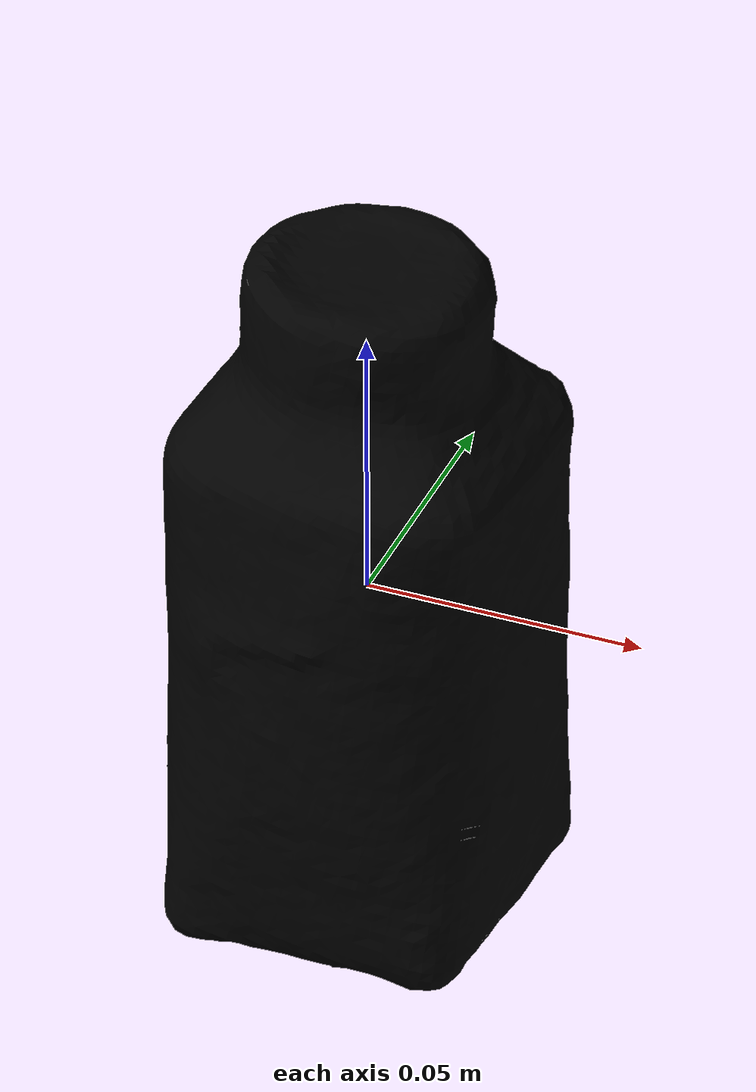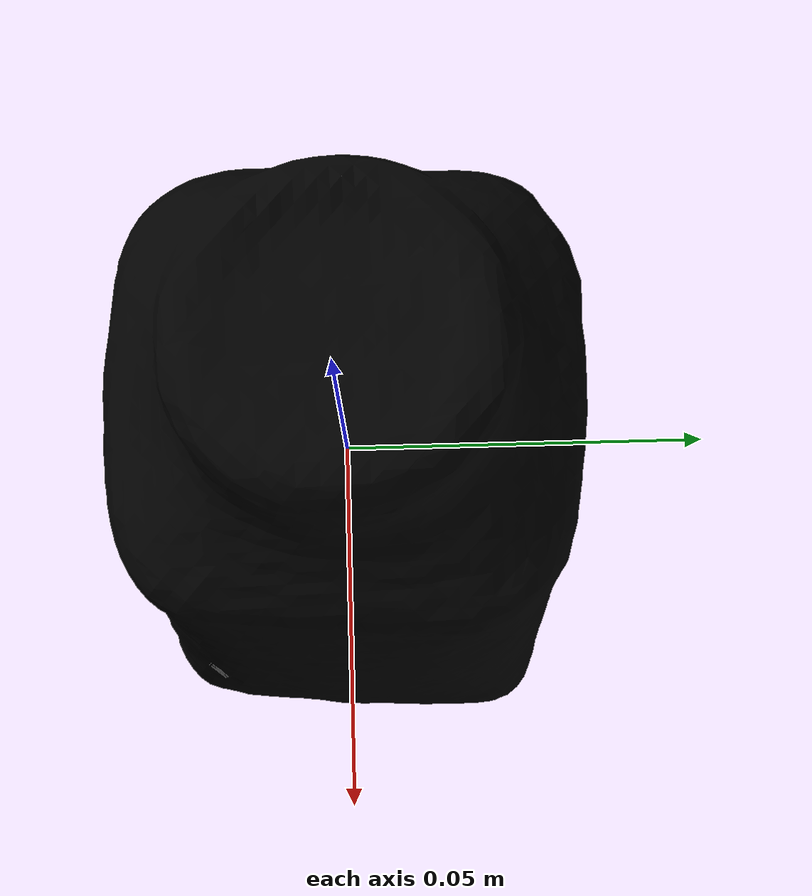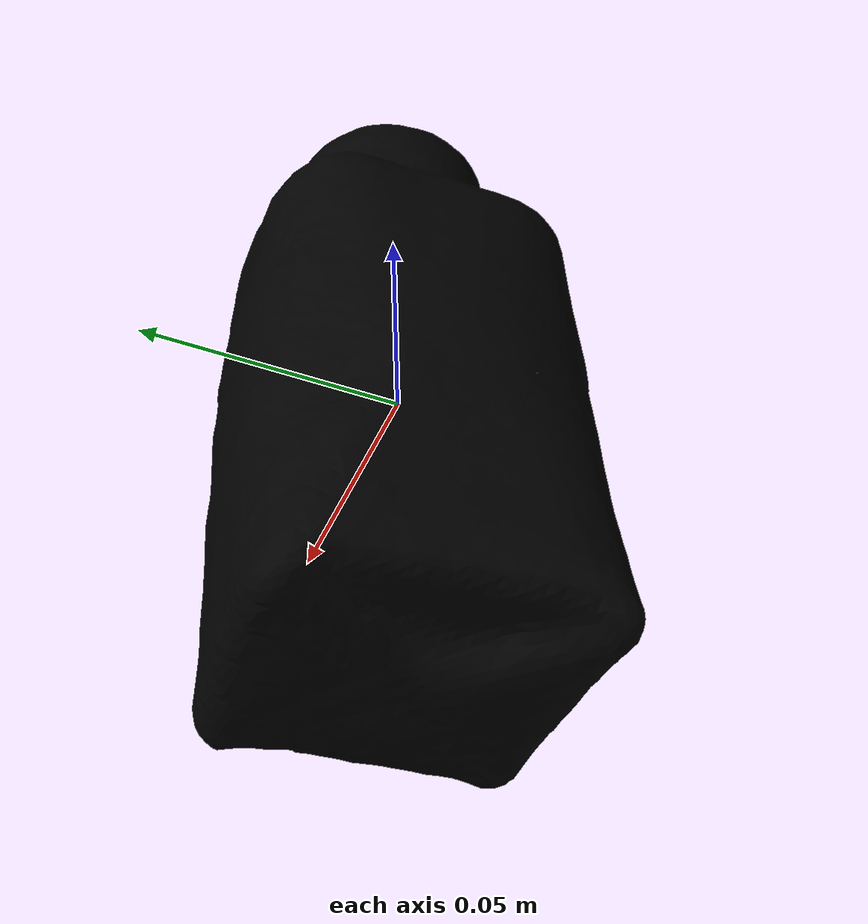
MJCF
<mujoco>
    <asset>
        <mesh name="C_bottle1" file="Collision/bottle_top.stl" scale="0.95 0.95 0.95"/>
        <mesh name="C_bottle2" file="Collision/bottle_bot.stl" scale="0.95 0.95 0.95"/>
        <mesh name="V_bottle" file="Visual/bottle.stl" scale="1.00 1.00 1.00"/>
        <material name="object" specular="0" shininess="0" reflectance="0" rgba="0 0 0 1.0"/>
        <material name="object_ref" specular="0" shininess="0" reflectance="0" rgba="0 0 0 1.0"/>
    </asset>
    <worldbody>
        <body name="bottle" pos="0 0 0" quat="1 0 0 0">
            <geom name = "C_bottle1" condim="3" density="125" friction="1 0.5 0.1" group="4" conaffinity="1" contype="1"
                  solref="-6000 -300" solimp="1.0 0.95 0.001 0.5 2" mesh="C_bottle1" type="mesh" material="object"/>
            <geom name = "C_bottle2" condim="3" density="125" friction="1 0.5 0.1" group="4" conaffinity="1" contype="1"
                  solref="-6000 -300" solimp="1.0 0.95 0.001 0.5 2" mesh="C_bottle2" type="mesh" material="object"/>
            <geom name = "V_bottle" mass="0" conaffinity="0" contype="0" group="1" mesh="V_bottle" type="mesh" material="object"/>
            <joint armature="0.001" damping="0" frictionloss="0.001" limited="false" type="free" />
        </body>
    </worldbody>
</mujoco>
